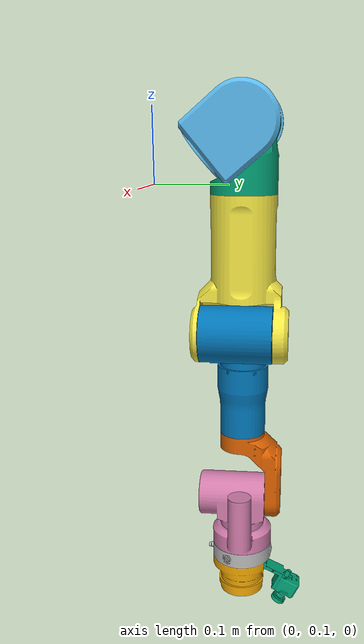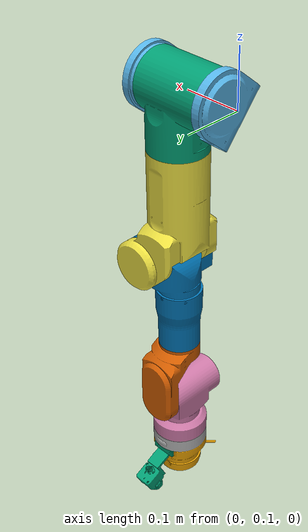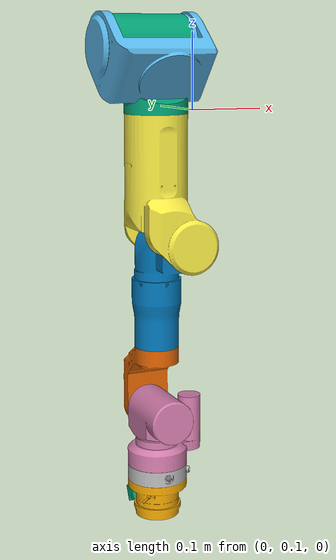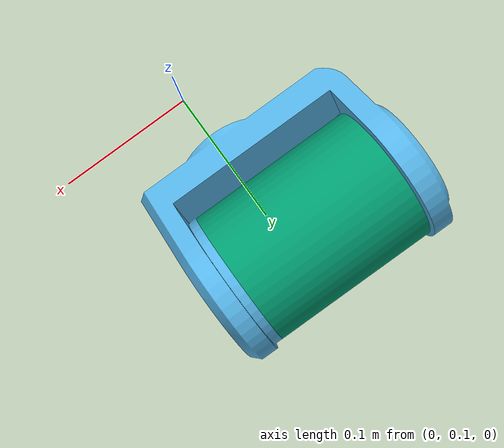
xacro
<?xml version="1.0"?>
<!-- Direct xacro translation of left_arm.urdf. -->
<robot xmlns:xacro="http://www.ros.org/wiki/xacro" name="rby1_left_arm">

  <xacro:arg name="mesh_root" default="ruby/rby1_description_drake/meshes"/>
  <xacro:property name="mesh_dir" value="$(arg mesh_root)"/>

  <!-- Links -->

  <link name="link_left_arm_base"/>

  <link name="link_left_arm_0">
    <inertial>
      <mass value="1.26164242"/>
      <origin rpy="0 0 0" xyz="-0.00316662 -0.03437151 0.00000242"/>
      <inertia ixx="0.00230624" ixy="-0.00039022" ixz="0.00000269" iyy="0.00426418" iyz="0.00000108"
        izz="0.00432159"/>
    </inertial>

    <visual>
      <origin xyz="0 0 0" rpy="1.57079632679 0 0"/>
      <geometry>
        <mesh filename="${mesh_dir}/LINK_14.obj"/>
      </geometry>
    </visual>

    <collision>
      <origin xyz="0.025 -0.018 -0.005" rpy="0 0 0"/>
      <geometry>
        <sphere radius="0.075"/>
      </geometry>
    </collision>
    <collision>
      <origin xyz="-0.015 -0.018 -0.005" rpy="0 0 0"/>
      <geometry>
        <sphere radius="0.075"/>
      </geometry>
    </collision>
    <collision>
      <origin xyz="-0.05 -0.018 -0.005" rpy="0 0 0"/>
      <geometry>
        <sphere radius="0.075"/>
      </geometry>
    </collision>
  </link>

  <link name="link_left_arm_1">
    <inertial>
      <mass value="1.88138658"/>
      <origin rpy="0 0 0" xyz="-0.00183470 0.00040596 -0.01008733"/>
      <inertia ixx="0.00295838" ixy="-0.00001176" ixz="0.00006949" iyy="0.00355208" iyz="0.00004467"
        izz="0.00230558"/>
    </inertial>

    <visual>
      <origin xyz="0 0 0" rpy="1.57079632679 0 0"/>
      <geometry>
        <mesh filename="${mesh_dir}/LINK_15.obj"/>
      </geometry>
    </visual>

    <collision>
      <origin xyz="0 0 -0.07" rpy="0 0 0"/>
      <geometry>
        <sphere radius="0.05"/>
      </geometry>
    </collision>
  </link>

  <link name="link_left_arm_2">
    <inertial>
      <mass value="2.35634437"/>
      <origin rpy="0 0 0" xyz="0.00066086 -0.00038583 -0.15742972"/>
      <inertia ixx="0.00842712" ixy="0.00000247" ixz="0.00036948" iyy="0.00802311" iyz="-0.00006550"
        izz="0.00295678"/>
    </inertial>

    <visual>
      <origin xyz="0 0 0" rpy="1.57079632679 0 0"/>
      <geometry>
        <mesh filename="${mesh_dir}/LINK_16.obj"/>
      </geometry>
    </visual>

    <collision>
      <origin xyz="0 0 -0.11" rpy="0 0 0"/>
      <geometry>
        <sphere radius="0.05"/>
      </geometry>
    </collision>
    <collision>
      <origin xyz="0 0 -0.15" rpy="0 0 0"/>
      <geometry>
        <sphere radius="0.05"/>
      </geometry>
    </collision>
    <collision>
      <origin xyz="0 0 -0.19" rpy="0 0 0"/>
      <geometry>
        <sphere radius="0.05"/>
      </geometry>
    </collision>
    <collision>
      <origin xyz="0 0 -0.23" rpy="0 0 0"/>
      <geometry>
        <sphere radius="0.05"/>
      </geometry>
    </collision>

    <collision>
      <origin xyz="0 0.02 -0.24" rpy="0 0 0"/>
      <geometry>
        <sphere radius="0.05"/>
      </geometry>
    </collision>
    <collision>
      <origin xyz="0 -0.022 -0.24" rpy="0 0 0"/>
      <geometry>
        <sphere radius="0.05"/>
      </geometry>
    </collision>

    <collision>
      <origin xyz="0.031 0.04 -0.275" rpy="0 0 0"/>
      <geometry>
        <sphere radius="0.045"/>
      </geometry>
    </collision>
    <collision>
      <origin xyz="0.031 -0.042 -0.275" rpy="0 0 0"/>
      <geometry>
        <sphere radius="0.045"/>
      </geometry>
    </collision>
  </link>

  <link name="link_left_arm_3">
    <inertial>
      <mass value="2.00905891"/>
      <origin rpy="0 0 0" xyz="-0.01565298 0.00793126 -0.04997943"/>
      <inertia ixx="0.00756474" ixy="-0.00026771" ixz="-0.00155419" iyy="0.00772758"
        iyz="-0.00084364" izz="0.00199754"/>
    </inertial>

    <visual>
      <origin xyz="0 0 0" rpy="1.57079632679 0 0"/>
      <geometry>
        <mesh filename="${mesh_dir}/LINK_17.obj"/>
      </geometry>
    </visual>

    <collision>
      <origin xyz="-0.015 0 0" rpy="0 0 0"/>
      <geometry>
        <sphere radius="0.06"/>
      </geometry>
    </collision>

    <collision>
      <origin xyz="-0.031 0 -0.06" rpy="0 0 0"/>
      <geometry>
        <sphere radius="0.04"/>
      </geometry>
    </collision>
    <collision>
      <origin xyz="-0.031 0 -0.09" rpy="0 0 0"/>
      <geometry>
        <sphere radius="0.04"/>
      </geometry>
    </collision>
    <collision>
      <origin xyz="-0.031 0 -0.132" rpy="0 0 0"/>
      <geometry>
        <sphere radius="0.04"/>
      </geometry>
    </collision>
  </link>

  <link name="link_left_arm_4">
    <inertial>
      <mass value="0.42508710"/>
      <origin rpy="0 0 0" xyz="0.00000011 0.02696036 0.06182110"/>
      <inertia ixx="0.00082466" ixy="0.0" ixz="0.0" iyy="0.00075398" iyz="0.00025338"
        izz="0.00039794"/>
    </inertial>

    <visual>
      <origin xyz="0 0 0" rpy="1.57079632679 0 0"/>
      <geometry>
        <mesh filename="${mesh_dir}/LINK_18.obj"/>
      </geometry>
    </visual>

    <collision>
      <origin xyz="0 0 0.08" rpy="0 0 0"/>
      <geometry>
        <sphere radius="0.04"/>
      </geometry>
    </collision>

    <collision>
      <origin xyz="0 0.027 0.07" rpy="0 0 0"/>
      <geometry>
        <sphere radius="0.04"/>
      </geometry>
    </collision>

    <collision>
      <origin xyz="0 0.032 0.05" rpy="0 0 0"/>
      <geometry>
        <sphere radius="0.04"/>
      </geometry>
    </collision>
    <collision>
      <origin xyz="0 0.032 0.025" rpy="0 0 0"/>
      <geometry>
        <sphere radius="0.04"/>
      </geometry>
    </collision>
    <collision>
      <origin xyz="0 0.032 0" rpy="0 0 0"/>
      <geometry>
        <sphere radius="0.04"/>
      </geometry>
    </collision>
  </link>

  <link name="link_left_arm_5">
    <inertial>
      <mass value="1.44264795"/>
      <origin rpy="0 0 0" xyz="0.00340082 0.00576824 -0.02507309"/>
      <inertia ixx="0.00233577" ixy="0.00003048" ixz="-0.00001191" iyy="0.00232580"
        iyz="-0.00019491" izz="0.00138375"/>
    </inertial>

    <visual>
      <origin xyz="0 0 0" rpy="1.57079632679 0 0"/>
      <geometry>
        <mesh filename="${mesh_dir}/LINK_19.obj"/>
      </geometry>
    </visual>

    <collision>
      <origin xyz="0.02 0 -0.021" rpy="0 0 0"/>
      <geometry>
        <sphere radius="0.065"/>
      </geometry>
    </collision>

    <collision>
      <origin xyz="0 -0.04 0" rpy="0 0 0"/>
      <geometry>
        <sphere radius="0.04"/>
      </geometry>
    </collision>

    <collision>
      <origin xyz="0 0 -0.057" rpy="0 0 0"/>
      <geometry>
        <sphere radius="0.05"/>
      </geometry>
    </collision>
  </link>

  <link name="link_left_arm_6">
    <inertial>
      <mass value="0.21137279"/>
      <origin rpy="0 0 0" xyz="-0.00066810 0.00031708 -0.09636043"/>
      <inertia ixx="0.00013511" ixy="-0.00000242" ixz="0.00000102" iyy="0.00014453"
        iyz="-0.00000094" izz="0.00025431"/>
    </inertial>

    <visual>
      <origin xyz="0 0 0" rpy="1.57079632679 0 0"/>
      <geometry>
        <mesh filename="${mesh_dir}/LINK_20.obj"/>
      </geometry>
    </visual>

    <collision>
      <origin xyz="0 0 -0.1" rpy="0 0 0"/>
      <geometry>
        <sphere radius="0.05"/>
      </geometry>
    </collision>
  </link>

  <link name="FT_sensor_L">
    <inertial>
      <mass value="0.49078507"/>
      <origin rpy="0 0 0" xyz="-0.00010423 -0.00108019 -0.01880676"/>
      <inertia ixx="0.00028587" ixy="-0.00000146" ixz="0.00000026" iyy="0.00030459" iyz="0.00000772"
        izz="0.00036377"/>
    </inertial>

    <visual>
      <origin xyz="0 0 0" rpy="1.57079632679 0 0"/>
      <geometry>
        <mesh filename="${mesh_dir}/FT_SENSOR_L.obj"/>
      </geometry>
    </visual>

    <collision>
      <origin xyz="0 0 -0.0275" rpy="0 0 0"/>
      <geometry>
        <sphere radius="0.04"/>
      </geometry>
    </collision>
  </link>

  <link name="ee_left"/>

  <!-- BEGIN: Wrist camera (RealSense), mounted on the FT sensor -->
  <link name="link_left_arm_camera">
    <visual>
      <origin xyz="0 .062 -0.038" rpy="0 0 3.14159"/>
      <geometry>
        <mesh filename="${mesh_dir}/rby1_wrist_camera.obj"/>
      </geometry>
    </visual>
    <!-- Simple primitive for collision, matching the rest of the arm. Tune size/origin to the camera envelope. -->
    <collision>
      <origin xyz="0 .062 -0.038" rpy="0 0 3.14159"/>
      <geometry>
        <box size="0.040 0.056 0.082"/>
      </geometry>
    </collision>
  </link>
  <!-- END: Wrist camera -->

  <!-- Joints -->

  <joint name="left_arm_0" type="revolute">
    <parent link="link_left_arm_base"/>
    <child link="link_left_arm_0"/>
    <origin rpy="0.349065850  0.0 0.0" xyz="0.0 0.220 0.080073452 "/>
    <axis xyz="0 1 0"/>
    <limit effort="1000.0" lower="-2.35619449" upper="2.35619449" velocity="3.14159265"/>
  </joint>

  <joint name="left_arm_1" type="revolute">
    <parent link="link_left_arm_0"/>
    <child link="link_left_arm_1"/>
    <origin rpy="-0.349065850 0.0 0.0" xyz="0.0 0.0 0.0"/>
    <axis xyz="1 0 0"/>
    <limit effort="1000.0" lower="-0.05" upper="3.14159265" velocity="3.14159265"/>
  </joint>

  <joint name="left_arm_2" type="revolute">
    <parent link="link_left_arm_1"/>
    <child link="link_left_arm_2"/>
    <origin rpy="0.0 0.0 0.0" xyz="0.0 0.0 0.0"/>
    <axis xyz="0 0 1"/>
    <limit effort="1000.0" lower="-2.09439510" upper="2.09439510" velocity="3.14159265"/>
  </joint>

  <joint name="left_arm_3" type="revolute">
    <parent link="link_left_arm_2"/>
    <child link="link_left_arm_3"/>
    <origin rpy="0.0 0.0 0.0" xyz="0.031 0.0 -0.276"/>
    <axis xyz="0 1 0"/>
    <limit effort="1000.0" lower="-2.61799388" upper="0.01" velocity="3.14159265"/>
  </joint>

  <joint name="left_arm_4" type="revolute">
    <parent link="link_left_arm_3"/>
    <child link="link_left_arm_4"/>
    <origin rpy="0.0 0.0 0.0" xyz="-0.031 0.0 -0.256"/>
    <axis xyz="0 0 1"/>
    <!-- Reduced from full +-2pi range for camera wires. -->
    <limit effort="1000.0" lower="-3.0" upper="3.0" velocity="3.14159265"/>
  </joint>

  <joint name="left_arm_5" type="revolute">
    <parent link="link_left_arm_4"/>
    <child link="link_left_arm_5"/>
    <origin rpy="0.0 0.0 0.0" xyz="0.0 0.0 0.0"/>
    <axis xyz="0 1 0"/>
    <limit effort="1000.0" lower="-1.74532925" upper="2.00712864" velocity="30.14159265"/>
  </joint>

  <joint name="left_arm_6" type="revolute">
    <parent link="link_left_arm_5"/>
    <child link="link_left_arm_6"/>
    <origin rpy="0.0 0.0 0.0" xyz="0.0 0.0 0.0"/>
    <axis xyz="0 0 1"/>
    <limit effort="1000.0" lower="-2.75" upper="2.75" velocity="3.14159265"/>
  </joint>

  <joint name="tool_left" type="fixed">
    <parent link="link_left_arm_6"/>
    <child link="FT_sensor_L"/>
    <origin rpy="0.0 0.0 0" xyz="0.0 0.0 -0.1087"/>
    <axis xyz="0 0 1"/>
  </joint>

  <joint name="FT_Sensor_END_left" type="fixed">
    <parent link="FT_sensor_L"/>
    <child link="ee_left"/>
    <origin rpy="0.0 0.0 0.0" xyz="0.0 0.0 -0.0461"/>
    <axis xyz="0 0 1"/>
  </joint>

  <!-- BEGIN: Wrist camera mount. -->
  <joint name="left_arm_camera_mount" type="fixed">
    <parent link="FT_sensor_L"/>
    <child link="link_left_arm_camera"/>
    <origin rpy="0.0 0.0 0.0" xyz="0.0 0.0 0.0"/>
    <axis xyz="0 0 1"/>
  </joint>
  <!-- END: Wrist camera mount -->

  <!-- Transmissions -->

  <transmission name="left_arm_0_transmission">
    <type>transmission_interface/SimpleTransmission</type>
    <joint name="left_arm_0">
      <hardwareInterface>PositionJointInterface</hardwareInterface>
    </joint>
    <actuator name="left_arm_0_motor">
      <hardwareInterface>PositionJointInterface</hardwareInterface>
      <mechanicalReduction>1</mechanicalReduction>
    </actuator>
  </transmission>

  <transmission name="left_arm_1_transmission">
    <type>transmission_interface/SimpleTransmission</type>
    <joint name="left_arm_1">
      <hardwareInterface>PositionJointInterface</hardwareInterface>
    </joint>
    <actuator name="left_arm_1_motor">
      <hardwareInterface>PositionJointInterface</hardwareInterface>
      <mechanicalReduction>1</mechanicalReduction>
    </actuator>
  </transmission>

  <transmission name="left_arm_2_transmission">
    <type>transmission_interface/SimpleTransmission</type>
    <joint name="left_arm_2">
      <hardwareInterface>PositionJointInterface</hardwareInterface>
    </joint>
    <actuator name="left_arm_2_motor">
      <hardwareInterface>PositionJointInterface</hardwareInterface>
      <mechanicalReduction>1</mechanicalReduction>
    </actuator>
  </transmission>

  <transmission name="left_arm_3_transmission">
    <type>transmission_interface/SimpleTransmission</type>
    <joint name="left_arm_3">
      <hardwareInterface>PositionJointInterface</hardwareInterface>
    </joint>
    <actuator name="left_arm_3_motor">
      <hardwareInterface>PositionJointInterface</hardwareInterface>
      <mechanicalReduction>1</mechanicalReduction>
    </actuator>
  </transmission>

  <transmission name="left_arm_4_transmission">
    <type>transmission_interface/SimpleTransmission</type>
    <joint name="left_arm_4">
      <hardwareInterface>PositionJointInterface</hardwareInterface>
    </joint>
    <actuator name="left_arm_4_motor">
      <hardwareInterface>PositionJointInterface</hardwareInterface>
      <mechanicalReduction>1</mechanicalReduction>
    </actuator>
  </transmission>

  <transmission name="left_arm_5_transmission">
    <type>transmission_interface/SimpleTransmission</type>
    <joint name="left_arm_5">
      <hardwareInterface>PositionJointInterface</hardwareInterface>
    </joint>
    <actuator name="left_arm_5_motor">
      <hardwareInterface>PositionJointInterface</hardwareInterface>
      <mechanicalReduction>1</mechanicalReduction>
    </actuator>
  </transmission>

  <transmission name="left_arm_6_transmission">
    <type>transmission_interface/SimpleTransmission</type>
    <joint name="left_arm_6">
      <hardwareInterface>PositionJointInterface</hardwareInterface>
    </joint>
    <actuator name="left_arm_6_motor">
      <hardwareInterface>PositionJointInterface</hardwareInterface>
      <mechanicalReduction>1</mechanicalReduction>
    </actuator>
  </transmission>

</robot>
